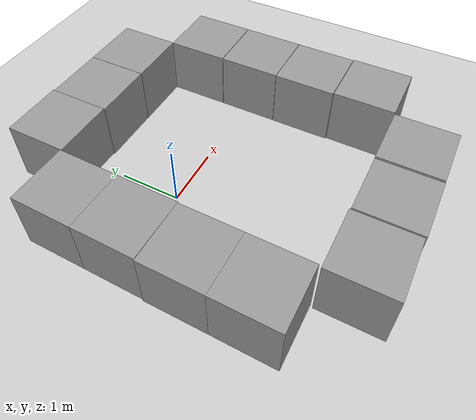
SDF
<sdf version="1.7">
 <world name="default">
  <light name="sun" type="directional">
   <pose>0 0 10 0 -0 0</pose>
   <diffuse>0.8 0.8 0.8 1</diffuse>
   <specular>0.2 0.2 0.2 1</specular>
   <attenuation>
    <range>1000</range>
    <constant>0.9</constant>
    <linear>0.01</linear>
    <quadratic>0.001</quadratic>
   </attenuation>
   <direction>-0.5 0.1 -0.9</direction>
   <spot><inner_angle>0</inner_angle><outer_angle>0</outer_angle><falloff>0</falloff></spot>
  </light>
  <model name="ground_plane">
   <static>1</static>
   <link name="link">
    <collision name="collision">
     <geometry><plane><normal>0 0 1</normal><size>100 100</size></plane></geometry>
     <surface>
      <contact><collide_bitmask>65535</collide_bitmask></contact>
      <friction><ode><mu>100</mu><mu2>50</mu2></ode></friction>
     </surface>
    </collision>
    <visual name="visual">
     <cast_shadows>0</cast_shadows>
     <geometry><plane><normal>0 0 1</normal><size>100 100</size></plane></geometry>
     <material>
      <script><uri>file://media/materials/scripts/gazebo.material</uri><name>Gazebo/Grey</name></script>
     </material>
    </visual>
   </link>
  </model>
  <gravity>0 0 -9.8</gravity>
  <magnetic_field>6e-06 2.3e-05 -4.2e-05</magnetic_field>
  <atmosphere type="adiabatic"/>
  <physics name="default_physics" default="0" type="ode">
   <max_step_size>0.001</max_step_size>
   <real_time_factor>1</real_time_factor>
   <real_time_update_rate>1000</real_time_update_rate>
  </physics>
  <scene><ambient>0.4 0.4 0.4 1</ambient><background>0.7 0.7 0.7 1</background><shadows>1</shadows></scene>
  <spherical_coordinates>
   <surface_model>EARTH_WGS84</surface_model>
   <latitude_deg>0</latitude_deg>
   <longitude_deg>0</longitude_deg>
   <elevation>0</elevation>
   <heading_deg>0</heading_deg>
  </spherical_coordinates>
  <model name="unit_box">
   <pose>-1.18302 -0.031219 0.5 0 0 -0.010182</pose>
   <link name="link">
    <inertial>
     <mass>1</mass>
     <inertia>
      <ixx>0.166667</ixx>
      <ixy>0</ixy>
      <ixz>0</ixz>
      <iyy>0.166667</iyy>
      <iyz>0</iyz>
      <izz>0.166667</izz>
     </inertia>
    </inertial>
    <collision name="collision"><geometry><box><size>1 1 1</size></box></geometry></collision>
    <visual name="visual">
     <geometry><box><size>1 1 1</size></box></geometry>
     <material>
      <script><name>Gazebo/Grey</name><uri>file://media/materials/scripts/gazebo.material</uri></script>
     </material>
    </visual>
   </link>
  </model>
  <model name="unit_box_0">
   <pose>-0.16402 1.95137 0.49978 -5e-05 0 0.004415</pose>
   <link name="link">
    <inertial>
     <mass>1</mass>
     <inertia>
      <ixx>0.166667</ixx>
      <ixy>0</ixy>
      <ixz>0</ixz>
      <iyy>0.166667</iyy>
      <iyz>0</iyz>
      <izz>0.166667</izz>
     </inertia>
    </inertial>
    <collision name="collision"><geometry><box><size>1 1 1</size></box></geometry></collision>
    <visual name="visual">
     <geometry><box><size>1 1 1</size></box></geometry>
     <material>
      <script><name>Gazebo/Grey</name><uri>file://media/materials/scripts/gazebo.material</uri></script>
     </material>
    </visual>
   </link>
  </model>
  <model name="unit_box_1">
   <pose>-1.17291 0.968754 0.5 0 0 -0.010173</pose>
   <link name="link">
    <inertial>
     <mass>1</mass>
     <inertia>
      <ixx>0.166667</ixx>
      <ixy>0</ixy>
      <ixz>0</ixz>
      <iyy>0.166667</iyy>
      <iyz>0</iyz>
      <izz>0.166667</izz>
     </inertia>
    </inertial>
    <collision name="collision"><geometry><box><size>1 1 1</size></box></geometry></collision>
    <visual name="visual">
     <geometry><box><size>1 1 1</size></box></geometry>
     <material>
      <script><name>Gazebo/Grey</name><uri>file://media/materials/scripts/gazebo.material</uri></script>
     </material>
    </visual>
   </link>
  </model>
  <model name="unit_box_2">
   <pose>0.836152 1.93479 0.498065 0 5e-05 0.004346</pose>
   <link name="link">
    <inertial>
     <mass>1</mass>
     <inertia>
      <ixx>0.166667</ixx>
      <ixy>0</ixy>
      <ixz>0</ixz>
      <iyy>0.166667</iyy>
      <iyz>0</iyz>
      <izz>0.166667</izz>
     </inertia>
    </inertial>
    <collision name="collision"><geometry><box><size>1 1 1</size></box></geometry></collision>
    <visual name="visual">
     <geometry><box><size>1 1 1</size></box></geometry>
     <material>
      <script><name>Gazebo/Grey</name><uri>file://media/materials/scripts/gazebo.material</uri></script>
     </material>
    </visual>
   </link>
  </model>
  <model name="unit_box_3">
   <pose>-1.20527 -1.03434 0.499805 0 0 -0.005184</pose>
   <link name="link">
    <inertial>
     <mass>1</mass>
     <inertia>
      <ixx>0.166667</ixx>
      <ixy>0</ixy>
      <ixz>0</ixz>
      <iyy>0.166667</iyy>
      <iyz>0</iyz>
      <izz>0.166667</izz>
     </inertia>
    </inertial>
    <collision name="collision"><geometry><box><size>1 1 1</size></box></geometry></collision>
    <visual name="visual">
     <geometry><box><size>1 1 1</size></box></geometry>
     <material>
      <script><name>Gazebo/Grey</name><uri>file://media/materials/scripts/gazebo.material</uri></script>
     </material>
    </visual>
   </link>
  </model>
  <model name="unit_box_4">
   <pose>-1.21031 -2.03437 0.499805 0 -0 -0.005189</pose>
   <link name="link">
    <inertial>
     <mass>1</mass>
     <inertia>
      <ixx>0.166667</ixx>
      <ixy>0</ixy>
      <ixz>0</ixz>
      <iyy>0.166667</iyy>
      <iyz>0</iyz>
      <izz>0.166667</izz>
     </inertia>
    </inertial>
    <collision name="collision"><geometry><box><size>1 1 1</size></box></geometry></collision>
    <visual name="visual">
     <geometry><box><size>1 1 1</size></box></geometry>
     <material>
      <script><name>Gazebo/Grey</name><uri>file://media/materials/scripts/gazebo.material</uri></script>
     </material>
    </visual>
   </link>
  </model>
  <model name="unit_box_5">
   <pose>-0.246967 -3.07359 0.499805 0 0 -0.000214</pose>
   <link name="link">
    <inertial>
     <mass>1</mass>
     <inertia>
      <ixx>0.166667</ixx>
      <ixy>0</ixy>
      <ixz>0</ixz>
      <iyy>0.166667</iyy>
      <iyz>0</iyz>
      <izz>0.166667</izz>
     </inertia>
    </inertial>
    <collision name="collision"><geometry><box><size>1 1 1</size></box></geometry></collision>
    <visual name="visual">
     <geometry><box><size>1 1 1</size></box></geometry>
     <material>
      <script><name>Gazebo/Grey</name><uri>file://media/materials/scripts/gazebo.material</uri></script>
     </material>
    </visual>
   </link>
  </model>
  <model name="unit_box_6">
   <pose>1.83618 1.93436 0.5 2e-06 -7e-06 0.004346</pose>
   <link name="link">
    <inertial>
     <mass>1</mass>
     <inertia>
      <ixx>0.166667</ixx>
      <ixy>0</ixy>
      <ixz>0</ixz>
      <iyy>0.166667</iyy>
      <iyz>0</iyz>
      <izz>0.166667</izz>
     </inertia>
    </inertial>
    <collision name="collision"><geometry><box><size>1 1 1</size></box></geometry></collision>
    <visual name="visual">
     <geometry><box><size>1 1 1</size></box></geometry>
     <material>
      <script><name>Gazebo/Grey</name><uri>file://media/materials/scripts/gazebo.material</uri></script>
     </material>
    </visual>
   </link>
  </model>
  <model name="unit_box_7">
   <pose>0.77781 -3.0953 0.499927 -0.000146 -0 -0.000206</pose>
   <link name="link">
    <inertial>
     <mass>1</mass>
     <inertia>
      <ixx>0.166667</ixx>
      <ixy>0</ixy>
      <ixz>0</ixz>
      <iyy>0.166667</iyy>
      <iyz>0</iyz>
      <izz>0.166667</izz>
     </inertia>
    </inertial>
    <collision name="collision"><geometry><box><size>1 1 1</size></box></geometry></collision>
    <visual name="visual">
     <geometry><box><size>1 1 1</size></box></geometry>
     <material>
      <script><name>Gazebo/Grey</name><uri>file://media/materials/scripts/gazebo.material</uri></script>
     </material>
    </visual>
   </link>
  </model>
  <model name="unit_box_8">
   <pose>1.81646 -3.09199 0.499805 0 -0 2.7e-05</pose>
   <link name="link">
    <inertial>
     <mass>1</mass>
     <inertia>
      <ixx>0.166667</ixx>
      <ixy>0</ixy>
      <ixz>0</ixz>
      <iyy>0.166667</iyy>
      <iyz>0</iyz>
      <izz>0.166667</izz>
     </inertia>
    </inertial>
    <collision name="collision"><geometry><box><size>1 1 1</size></box></geometry></collision>
    <visual name="visual">
     <geometry><box><size>1 1 1</size></box></geometry>
     <material>
      <script><name>Gazebo/Grey</name><uri>file://media/materials/scripts/gazebo.material</uri></script>
     </material>
    </visual>
   </link>
  </model>
  <model name="unit_box_9">
   <pose>2.84753 -2.08772 0.499805 -0 -0 -0.000196</pose>
   <link name="link">
    <inertial>
     <mass>1</mass>
     <inertia>
      <ixx>0.166667</ixx>
      <ixy>0</ixy>
      <ixz>0</ixz>
      <iyy>0.166667</iyy>
      <iyz>0</iyz>
      <izz>0.166667</izz>
     </inertia>
    </inertial>
    <collision name="collision"><geometry><box><size>1 1 1</size></box></geometry></collision>
    <visual name="visual">
     <geometry><box><size>1 1 1</size></box></geometry>
     <material>
      <script><name>Gazebo/Grey</name><uri>file://media/materials/scripts/gazebo.material</uri></script>
     </material>
    </visual>
   </link>
  </model>
  <model name="unit_box_10">
   <pose>2.82832 -1.07839 0.499927 0.000146 0 -0.0002</pose>
   <link name="link">
    <inertial>
     <mass>1</mass>
     <inertia>
      <ixx>0.166667</ixx>
      <ixy>0</ixy>
      <ixz>0</ixz>
      <iyy>0.166667</iyy>
      <iyz>0</iyz>
      <izz>0.166667</izz>
     </inertia>
    </inertial>
    <collision name="collision"><geometry><box><size>1 1 1</size></box></geometry></collision>
    <visual name="visual">
     <geometry><box><size>1 1 1</size></box></geometry>
     <material>
      <script><name>Gazebo/Grey</name><uri>file://media/materials/scripts/gazebo.material</uri></script>
     </material>
    </visual>
   </link>
  </model>
  <model name="unit_box_11">
   <pose>2.83106 -0.072348 0.499805 0 -0 0.000479</pose>
   <link name="link">
    <inertial>
     <mass>1</mass>
     <inertia>
      <ixx>0.166667</ixx>
      <ixy>0</ixy>
      <ixz>0</ixz>
      <iyy>0.166667</iyy>
      <iyz>0</iyz>
      <izz>0.166667</izz>
     </inertia>
    </inertial>
    <collision name="collision"><geometry><box><size>1 1 1</size></box></geometry></collision>
    <visual name="visual">
     <geometry><box><size>1 1 1</size></box></geometry>
     <material>
      <script><name>Gazebo/Grey</name><uri>file://media/materials/scripts/gazebo.material</uri></script>
     </material>
    </visual>
   </link>
  </model>
  <model name="unit_box_12">
   <pose>2.83066 0.936374 0.499805 0 -0 0.001234</pose>
   <link name="link">
    <inertial>
     <mass>1</mass>
     <inertia>
      <ixx>0.166667</ixx>
      <ixy>0</ixy>
      <ixz>0</ixz>
      <iyy>0.166667</iyy>
      <iyz>0</iyz>
      <izz>0.166667</izz>
     </inertia>
    </inertial>
    <collision name="collision"><geometry><box><size>1 1 1</size></box></geometry></collision>
    <visual name="visual">
     <geometry><box><size>1 1 1</size></box></geometry>
     <material>
      <script><name>Gazebo/Grey</name><uri>file://media/materials/scripts/gazebo.material</uri></script>
     </material>
    </visual>
   </link>
  </model>
 </world>
</sdf>
